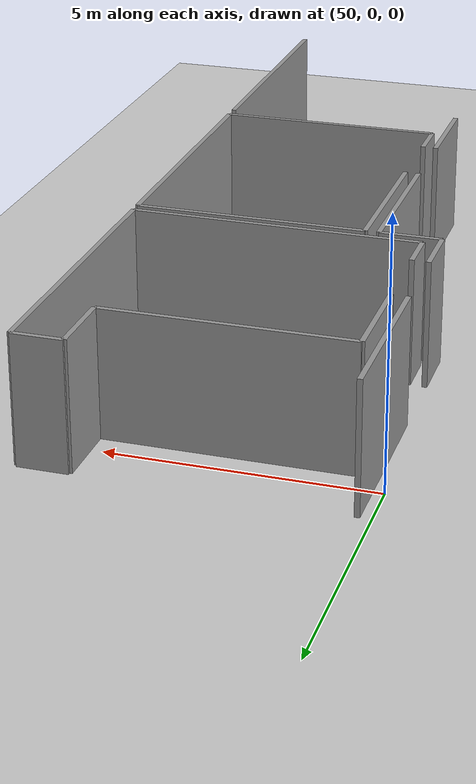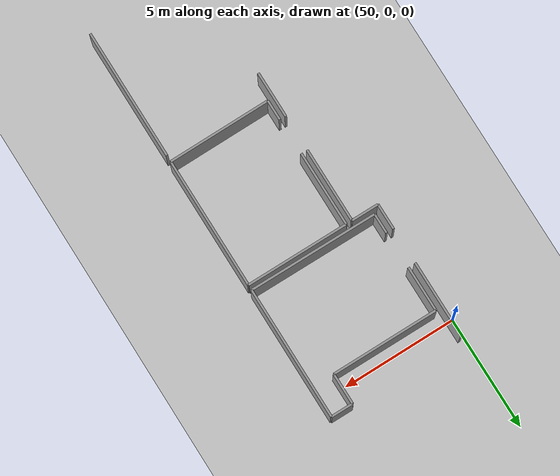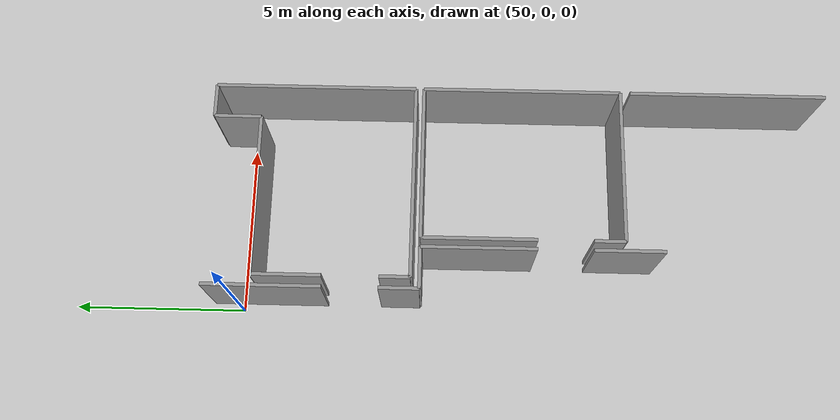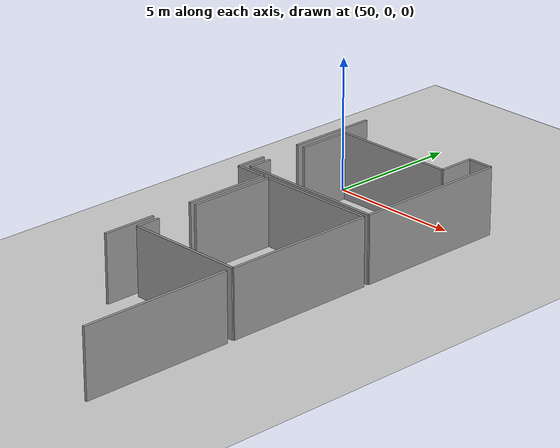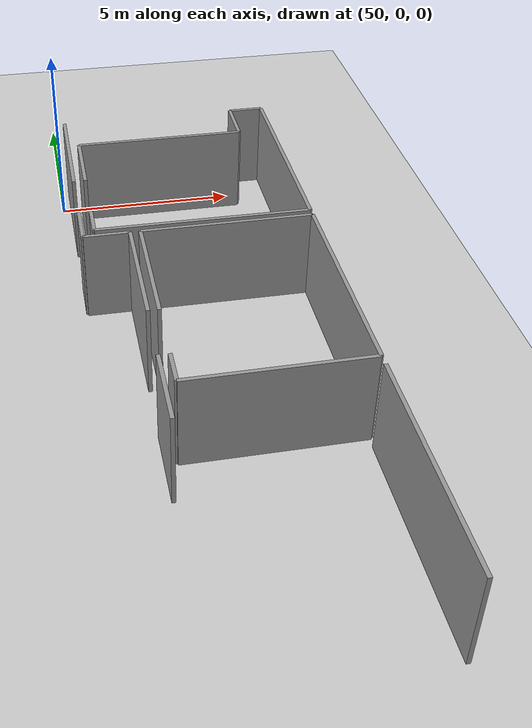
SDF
<sdf version="1.6">
 <world name="default">
  <model name="ground_plane">
   <static>1</static>
   <link name="link">
    <collision name="collision">
     <geometry><plane><normal>0 0 1</normal><size>100 100</size></plane></geometry>
     <surface><friction><ode><mu>100</mu><mu2>50</mu2></ode></friction></surface>
    </collision>
    <visual name="visual">
     <cast_shadows>0</cast_shadows>
     <geometry><plane><normal>0 0 1</normal><size>100 100</size></plane></geometry>
     <material>
      <script><uri>file://media/materials/scripts/gazebo.material</uri><name>Gazebo/Grey</name></script>
     </material>
    </visual>
   </link>
  </model>
  <model name="50057024">
   <static>1</static>
   <link name="Wall_185">
    <collision name="Wall_185_Collision">
     <geometry><box><size>5.72466662862 0.1 2.5</size></box></geometry>
     <pose>2.86233331431 0 1.25 0 0 0</pose>
    </collision>
    <visual name="Wall_185_Visual">
     <pose>2.86233331431 0 1.25 0 0 0</pose>
     <geometry><box><size>5.72466662862 0.1 2.5</size></box></geometry>
     <material>
      <script><uri>file://media/materials/scripts/gazebo.material</uri><name>Gazebo/Grey</name></script>
      <ambient>1 1 1 1</ambient>
     </material>
    </visual>
    <pose>112.376115201 -35.7500935279 0 0 0 -1.57079632679</pose>
   </link>
   <link name="Wall_187">
    <collision name="Wall_187_Collision">
     <geometry><box><size>0.891780326809 0.1 2.5</size></box></geometry>
     <pose>0.445890163404 0 1.25 0 0 0</pose>
    </collision>
    <visual name="Wall_187_Visual">
     <pose>0.445890163404 0 1.25 0 0 0</pose>
     <geometry><box><size>0.891780326809 0.1 2.5</size></box></geometry>
     <material>
      <script><uri>file://media/materials/scripts/gazebo.material</uri><name>Gazebo/Grey</name></script>
      <ambient>1 1 1 1</ambient>
     </material>
    </visual>
    <pose>107.869022935 -35.4911322896 0 0 0 1.57079632679</pose>
   </link>
   <link name="Wall_188">
    <collision name="Wall_188_Collision">
     <geometry><box><size>3.30638462465 0.1 2.5</size></box></geometry>
     <pose>1.65319231233 0 1.25 0 0 0</pose>
    </collision>
    <visual name="Wall_188_Visual">
     <pose>1.65319231233 0 1.25 0 0 0</pose>
     <geometry><box><size>3.30638462465 0.1 2.5</size></box></geometry>
     <material>
      <script><uri>file://media/materials/scripts/gazebo.material</uri><name>Gazebo/Grey</name></script>
      <ambient>1 1 1 1</ambient>
     </material>
    </visual>
    <pose>107.869022935 -33.0147678924 0 0 0 1.57079632679</pose>
   </link>
   <link name="Wall_189">
    <collision name="Wall_189_Collision">
     <geometry><box><size>4.50836044056 0.1 2.5</size></box></geometry>
     <pose>2.25418022028 0 1.25 0 0 0</pose>
    </collision>
    <visual name="Wall_189_Visual">
     <pose>2.25418022028 0 1.25 0 0 0</pose>
     <geometry><box><size>4.50836044056 0.1 2.5</size></box></geometry>
     <material>
      <script><uri>file://media/materials/scripts/gazebo.material</uri><name>Gazebo/Grey</name></script>
      <ambient>1 1 1 1</ambient>
     </material>
    </visual>
    <pose>107.869022935 -29.7083832677 0 0 0 0.0</pose>
   </link>
   <link name="Wall_190">
    <collision name="Wall_190_Collision">
     <geometry><box><size>5.75396146018 0.1 2.5</size></box></geometry>
     <pose>2.87698073009 0 1.25 0 0 0</pose>
    </collision>
    <visual name="Wall_190_Visual">
     <pose>2.87698073009 0 1.25 0 0 0</pose>
     <geometry><box><size>5.75396146018 0.1 2.5</size></box></geometry>
     <material>
      <script><uri>file://media/materials/scripts/gazebo.material</uri><name>Gazebo/Grey</name></script>
      <ambient>1 1 1 1</ambient>
     </material>
    </visual>
    <pose>112.377383376 -29.7083832677 0 0 0 -1.57079632679</pose>
   </link>
   <link name="Wall_191">
    <collision name="Wall_191_Collision">
     <geometry><box><size>4.50845234928 0.1 2.5</size></box></geometry>
     <pose>2.25422617464 0 1.25 0 0 0</pose>
    </collision>
    <visual name="Wall_191_Visual">
     <pose>2.25422617464 0 1.25 0 0 0</pose>
     <geometry><box><size>4.50845234928 0.1 2.5</size></box></geometry>
     <material>
      <script><uri>file://media/materials/scripts/gazebo.material</uri><name>Gazebo/Grey</name></script>
      <ambient>1 1 1 1</ambient>
     </material>
    </visual>
    <pose>112.377383376 -35.4623447279 0 0 0 -3.13520736766</pose>
   </link>
   <link name="Wall_194">
    <collision name="Wall_194_Collision">
     <geometry><box><size>3.37042743822 0.1 2.5</size></box></geometry>
     <pose>1.68521371911 0 1.25 0 0 0</pose>
    </collision>
    <visual name="Wall_194_Visual">
     <pose>1.68521371911 0 1.25 0 0 0</pose>
     <geometry><box><size>3.37042743822 0.1 2.5</size></box></geometry>
     <material>
      <script><uri>file://media/materials/scripts/gazebo.material</uri><name>Gazebo/Grey</name></script>
      <ambient>1 1 1 1</ambient>
     </material>
    </visual>
    <pose>106.403013183 -23.6163264789 0 0 0 -1.57079632679</pose>
   </link>
   <link name="Wall_195">
    <collision name="Wall_195_Collision">
     <geometry><box><size>1.14744431129 0.1 2.5</size></box></geometry>
     <pose>0.573722155643 0 1.25 0 0 0</pose>
    </collision>
    <visual name="Wall_195_Visual">
     <pose>0.573722155643 0 1.25 0 0 0</pose>
     <geometry><box><size>1.14744431129 0.1 2.5</size></box></geometry>
     <material>
      <script><uri>file://media/materials/scripts/gazebo.material</uri><name>Gazebo/Grey</name></script>
      <ambient>1 1 1 1</ambient>
     </material>
    </visual>
    <pose>106.403013183 -28.5641093927 0 0 0 -1.57079632679</pose>
   </link>
   <link name="Wall_196">
    <collision name="Wall_196_Collision">
     <geometry><box><size>1.19969310176 0.1 2.5</size></box></geometry>
     <pose>0.599846550882 0 1.25 0 0 0</pose>
    </collision>
    <visual name="Wall_196_Visual">
     <pose>0.599846550882 0 1.25 0 0 0</pose>
     <geometry><box><size>1.19969310176 0.1 2.5</size></box></geometry>
     <material>
      <script><uri>file://media/materials/scripts/gazebo.material</uri><name>Gazebo/Grey</name></script>
      <ambient>1 1 1 1</ambient>
     </material>
    </visual>
    <pose>106.403013183 -29.711553704 0 0 0 0.0</pose>
   </link>
   <link name="Wall_197">
    <collision name="Wall_197_Collision">
     <geometry><box><size>3.29890239495 0.1 2.5</size></box></geometry>
     <pose>1.64945119747 0 1.25 0 0 0</pose>
    </collision>
    <visual name="Wall_197_Visual">
     <pose>1.64945119747 0 1.25 0 0 0</pose>
     <geometry><box><size>3.29890239495 0.1 2.5</size></box></geometry>
     <material>
      <script><uri>file://media/materials/scripts/gazebo.material</uri><name>Gazebo/Grey</name></script>
      <ambient>1 1 1 1</ambient>
     </material>
    </visual>
    <pose>107.602706284 -29.711553704 0 0 0 -1.57079632679</pose>
   </link>
   <link name="Wall_198">
    <collision name="Wall_198_Collision">
     <geometry><box><size>2.03453239235 0.1 2.5</size></box></geometry>
     <pose>1.01726619617 0 1.25 0 0 0</pose>
    </collision>
    <visual name="Wall_198_Visual">
     <pose>1.01726619617 0 1.25 0 0 0</pose>
     <geometry><box><size>2.03453239235 0.1 2.5</size></box></geometry>
     <material>
      <script><uri>file://media/materials/scripts/gazebo.material</uri><name>Gazebo/Grey</name></script>
      <ambient>1 1 1 1</ambient>
     </material>
    </visual>
    <pose>107.602706284 -34.5864165827 0 0 0 -1.57079632679</pose>
   </link>
   <link name="Wall_202">
    <collision name="Wall_202_Collision">
     <geometry><box><size>0.87732313721 0.1 2.5</size></box></geometry>
     <pose>0.438661568605 0 1.25 0 0 0</pose>
    </collision>
    <visual name="Wall_202_Visual">
     <pose>0.438661568605 0 1.25 0 0 0</pose>
     <geometry><box><size>0.87732313721 0.1 2.5</size></box></geometry>
     <material>
      <script><uri>file://media/materials/scripts/gazebo.material</uri><name>Gazebo/Grey</name></script>
      <ambient>1 1 1 1</ambient>
     </material>
    </visual>
    <pose>106.717520465 -29.454621545 0 0 0 1.57079632679</pose>
   </link>
   <link name="Wall_203">
    <collision name="Wall_203_Collision">
     <geometry><box><size>1.9910340061 0.1 2.5</size></box></geometry>
     <pose>0.99551700305 0 1.25 0 0 0</pose>
    </collision>
    <visual name="Wall_203_Visual">
     <pose>0.99551700305 0 1.25 0 0 0</pose>
     <geometry><box><size>1.9910340061 0.1 2.5</size></box></geometry>
     <material>
      <script><uri>file://media/materials/scripts/gazebo.material</uri><name>Gazebo/Grey</name></script>
      <ambient>1 1 1 1</ambient>
     </material>
    </visual>
    <pose>106.717520465 -26.9740721718 0 0 0 1.57079632679</pose>
   </link>
   <link name="Wall_204">
    <collision name="Wall_204_Collision">
     <geometry><box><size>4.69478209591 0.1 2.5</size></box></geometry>
     <pose>2.34739104796 0 1.25 0 0 0</pose>
    </collision>
    <visual name="Wall_204_Visual">
     <pose>2.34739104796 0 1.25 0 0 0</pose>
     <geometry><box><size>4.69478209591 0.1 2.5</size></box></geometry>
     <material>
      <script><uri>file://media/materials/scripts/gazebo.material</uri><name>Gazebo/Grey</name></script>
      <ambient>1 1 1 1</ambient>
     </material>
    </visual>
    <pose>106.717520465 -24.9830381657 0 0 0 0.0</pose>
   </link>
   <link name="Wall_205">
    <collision name="Wall_205_Collision">
     <geometry><box><size>1.35694674301 0.1 2.5</size></box></geometry>
     <pose>0.678473371505 0 1.25 0 0 0</pose>
    </collision>
    <visual name="Wall_205_Visual">
     <pose>0.678473371505 0 1.25 0 0 0</pose>
     <geometry><box><size>1.35694674301 0.1 2.5</size></box></geometry>
     <material>
      <script><uri>file://media/materials/scripts/gazebo.material</uri><name>Gazebo/Grey</name></script>
      <ambient>1 1 1 1</ambient>
     </material>
    </visual>
    <pose>111.412302561 -24.9830381657 0 0 0 1.57079632679</pose>
   </link>
   <link name="Wall_206">
    <collision name="Wall_206_Collision">
     <geometry><box><size>0.963812639896 0.1 2.5</size></box></geometry>
     <pose>0.481906319948 0 1.25 0 0 0</pose>
    </collision>
    <visual name="Wall_206_Visual">
     <pose>0.481906319948 0 1.25 0 0 0</pose>
     <geometry><box><size>0.963812639896 0.1 2.5</size></box></geometry>
     <material>
      <script><uri>file://media/materials/scripts/gazebo.material</uri><name>Gazebo/Grey</name></script>
      <ambient>1 1 1 1</ambient>
     </material>
    </visual>
    <pose>111.412302561 -23.6260914227 0 0 0 0.0</pose>
   </link>
   <link name="Wall_207">
    <collision name="Wall_207_Collision">
     <geometry><box><size>5.84628456568 0.1 2.5</size></box></geometry>
     <pose>2.92314228284 0 1.25 0 0 0</pose>
    </collision>
    <visual name="Wall_207_Visual">
     <pose>2.92314228284 0 1.25 0 0 0</pose>
     <geometry><box><size>5.84628456568 0.1 2.5</size></box></geometry>
     <material>
      <script><uri>file://media/materials/scripts/gazebo.material</uri><name>Gazebo/Grey</name></script>
      <ambient>1 1 1 1</ambient>
     </material>
    </visual>
    <pose>112.376115201 -23.6260914227 0 0 0 -1.57079632679</pose>
   </link>
   <link name="Wall_208">
    <collision name="Wall_208_Collision">
     <geometry><box><size>5.65862258897 0.1 2.5</size></box></geometry>
     <pose>2.82931129448 0 1.25 0 0 0</pose>
    </collision>
    <visual name="Wall_208_Visual">
     <pose>2.82931129448 0 1.25 0 0 0</pose>
     <geometry><box><size>5.65862258897 0.1 2.5</size></box></geometry>
     <material>
      <script><uri>file://media/materials/scripts/gazebo.material</uri><name>Gazebo/Grey</name></script>
      <ambient>1 1 1 1</ambient>
     </material>
    </visual>
    <pose>112.376115201 -29.4723759884 0 0 0 3.13845505743</pose>
   </link>
   <pose>-56.15 24.49446315 0 0 0 0</pose>
  </model>
 </world>
</sdf>
